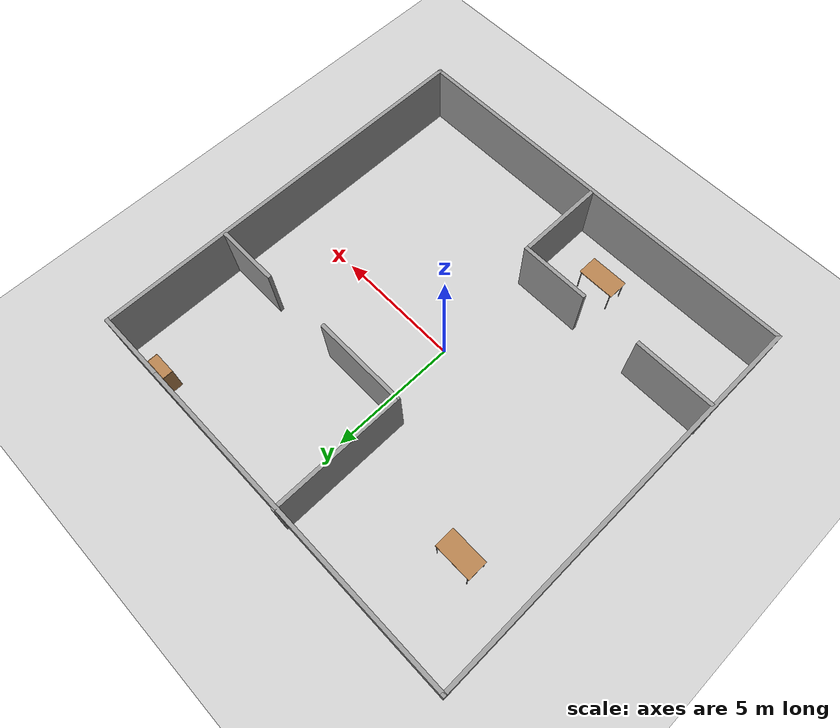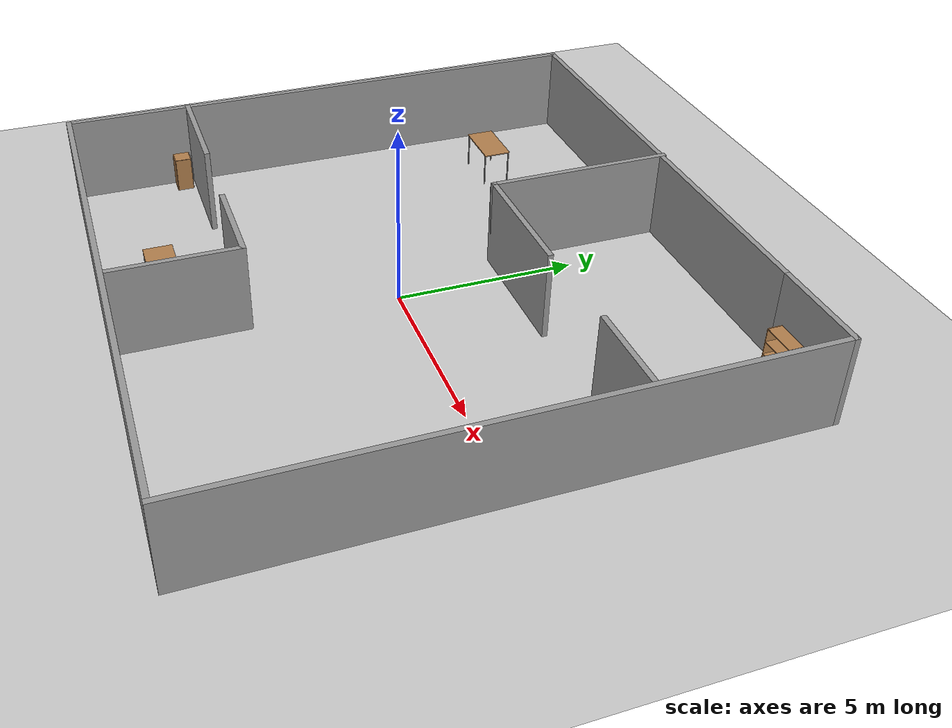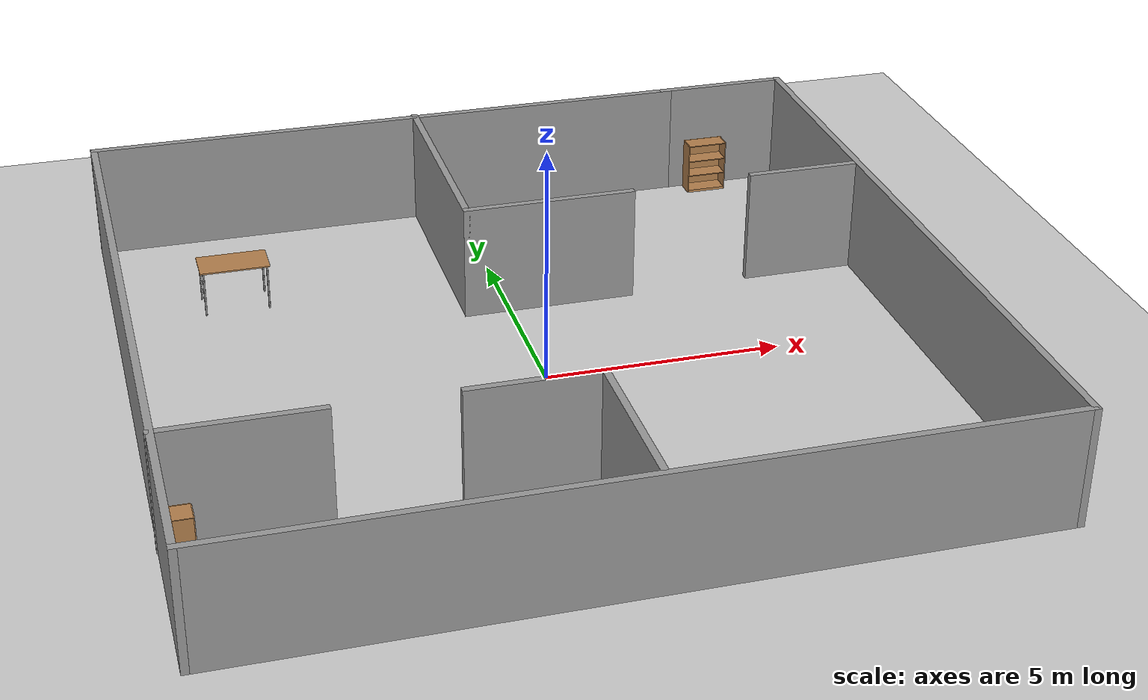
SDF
<sdf version="1.7">
 <world name="default">
  <light name="sun" type="directional">
   <pose>0 0 10 0 -0 0</pose>
   <diffuse>0.8 0.8 0.8 1</diffuse>
   <specular>0.2 0.2 0.2 1</specular>
   <attenuation>
    <range>1000</range>
    <constant>0.9</constant>
    <linear>0.01</linear>
    <quadratic>0.001</quadratic>
   </attenuation>
   <direction>-0.5 0.1 -0.9</direction>
   <spot><inner_angle>0</inner_angle><outer_angle>0</outer_angle><falloff>0</falloff></spot>
  </light>
  <model name="ground_plane">
   <static>1</static>
   <link name="link">
    <collision name="collision">
     <geometry><plane><normal>0 0 1</normal><size>100 100</size></plane></geometry>
     <surface>
      <contact><collide_bitmask>65535</collide_bitmask></contact>
      <friction><ode><mu>100</mu><mu2>50</mu2></ode></friction>
     </surface>
    </collision>
    <visual name="visual">
     <cast_shadows>0</cast_shadows>
     <geometry><plane><normal>0 0 1</normal><size>100 100</size></plane></geometry>
     <material>
      <script><uri>file://media/materials/scripts/gazebo.material</uri><name>Gazebo/Grey</name></script>
     </material>
    </visual>
   </link>
  </model>
  <gravity>0 0 -9.8</gravity>
  <magnetic_field>6e-06 2.3e-05 -4.2e-05</magnetic_field>
  <atmosphere type="adiabatic"/>
  <physics type="ode">
   <max_step_size>0.001</max_step_size>
   <real_time_factor>1</real_time_factor>
   <real_time_update_rate>1000</real_time_update_rate>
  </physics>
  <scene><ambient>0.4 0.4 0.4 1</ambient><background>0.7 0.7 0.7 1</background><shadows>1</shadows></scene>
  <audio><device>default</device></audio>
  <spherical_coordinates>
   <surface_model>EARTH_WGS84</surface_model>
   <latitude_deg>0</latitude_deg>
   <longitude_deg>0</longitude_deg>
   <elevation>0</elevation>
   <heading_deg>0</heading_deg>
  </spherical_coordinates>
  <model name="Untitled">
   <pose>-0.141606 0.2893 0 0 -0 0</pose>
   <link name="Wall_10">
    <collision name="Wall_10_Collision">
     <geometry><box><size>15.75 0.15 2.5</size></box></geometry>
     <pose>0 0 1.25 0 -0 0</pose>
    </collision>
    <visual name="Wall_10_Visual">
     <pose>0 0 1.25 0 -0 0</pose>
     <geometry><box><size>15.75 0.15 2.5</size></box></geometry>
     <material>
      <script><uri>file://media/materials/scripts/gazebo.material</uri><name>Gazebo/Grey</name></script>
      <ambient>1 1 1 1</ambient>
     </material>
     <meta><layer>0</layer></meta>
    </visual>
    <pose>-8.03946 -0.027434 0 0 -0 -1.5708</pose>
   </link>
   <link name="Wall_11">
    <collision name="Wall_11_Collision">
     <geometry><box><size>16.25 0.15 2.5</size></box></geometry>
     <pose>0 0 1.25 0 -0 0</pose>
    </collision>
    <visual name="Wall_11_Visual">
     <pose>0 0 1.25 0 -0 0</pose>
     <geometry><box><size>16.25 0.15 2.5</size></box></geometry>
     <material>
      <script><uri>file://media/materials/scripts/gazebo.material</uri><name>Gazebo/Grey</name></script>
      <ambient>1 1 1 1</ambient>
     </material>
     <meta><layer>0</layer></meta>
    </visual>
    <pose>0.010541 -7.82743 0 0 -0 0</pose>
   </link>
   <link name="Wall_12">
    <collision name="Wall_12_Collision">
     <geometry><box><size>15.75 0.15 2.5</size></box></geometry>
     <pose>0 0 1.25 0 -0 0</pose>
    </collision>
    <visual name="Wall_12_Visual">
     <pose>0 0 1.25 0 -0 0</pose>
     <geometry><box><size>15.75 0.15 2.5</size></box></geometry>
     <material>
      <script><uri>file://media/materials/scripts/gazebo.material</uri><name>Gazebo/Grey</name></script>
      <ambient>1 1 1 1</ambient>
     </material>
     <meta><layer>0</layer></meta>
    </visual>
    <pose>8.06054 -0.027434 0 0 -0 1.5708</pose>
   </link>
   <link name="Wall_13">
    <collision name="Wall_13_Collision">
     <geometry><box><size>3 0.15 2.5</size></box></geometry>
     <pose>0 0 1.25 0 -0 0</pose>
    </collision>
    <visual name="Wall_13_Visual">
     <pose>0 0 1.25 0 -0 0</pose>
     <geometry><box><size>3 0.15 2.5</size></box></geometry>
     <material>
      <script><uri>file://media/materials/scripts/gazebo.material</uri><name>Gazebo/Grey</name></script>
      <ambient>1 1 1 1</ambient>
     </material>
     <meta><layer>0</layer></meta>
    </visual>
    <pose>6.63554 7.77257 0 0 -0 3.14159</pose>
   </link>
   <link name="Wall_15">
    <collision name="Wall_15_Collision">
     <geometry><box><size>5.25 0.15 2.5</size></box></geometry>
     <pose>0 0 1.25 0 -0 0</pose>
    </collision>
    <visual name="Wall_15_Visual">
     <pose>0 0 1.25 0 -0 0</pose>
     <geometry><box><size>5.25 0.15 2.5</size></box></geometry>
     <material>
      <script><uri>file://media/materials/scripts/gazebo.material</uri><name>Gazebo/Grey</name></script>
      <ambient>1 1 1 1</ambient>
     </material>
     <meta><layer>0</layer></meta>
    </visual>
    <pose>-0.770523 5.27744 0 0 -0 -1.5708</pose>
   </link>
   <link name="Wall_16">
    <collision name="Wall_16_Collision">
     <geometry><box><size>3.75 0.15 2.5</size></box></geometry>
     <pose>0 0 1.25 0 -0 0</pose>
    </collision>
    <visual name="Wall_16_Visual">
     <pose>0 0 1.25 0 -0 0</pose>
     <geometry><box><size>3.75 0.15 2.5</size></box></geometry>
     <material>
      <script><uri>file://media/materials/scripts/gazebo.material</uri><name>Gazebo/Grey</name></script>
      <ambient>1 1 1 1</ambient>
     </material>
     <meta><layer>0</layer></meta>
    </visual>
    <pose>1.02948 2.72744 0 0 -0 0</pose>
   </link>
   <link name="Wall_19">
    <collision name="Wall_19_Collision">
     <geometry><box><size>2.5 0.15 2.5</size></box></geometry>
     <pose>0 0 1.25 0 -0 0</pose>
    </collision>
    <visual name="Wall_19_Visual">
     <pose>0 0 1.25 0 -0 0</pose>
     <geometry><box><size>2.5 0.15 2.5</size></box></geometry>
     <material>
      <script><uri>file://media/materials/scripts/gazebo.material</uri><name>Gazebo/Grey</name></script>
      <ambient>1 1 1 1</ambient>
     </material>
     <meta><layer>0</layer></meta>
    </visual>
    <pose>6.79169 2.82626 0 0 -0 0</pose>
   </link>
   <link name="Wall_21">
    <collision name="Wall_21_Collision">
     <geometry><box><size>3.25 0.15 2.5</size></box></geometry>
     <pose>0 0 1.25 0 -0 0</pose>
    </collision>
    <visual name="Wall_21_Visual">
     <pose>0 0 1.25 0 -0 0</pose>
     <geometry><box><size>3.25 0.15 2.5</size></box></geometry>
     <material>
      <script><uri>file://media/materials/scripts/gazebo.material</uri><name>Gazebo/Grey</name></script>
      <ambient>1 1 1 1</ambient>
     </material>
     <meta><layer>0</layer></meta>
    </visual>
    <pose>-6.51054 -4.30969 0 0 -0 0</pose>
   </link>
   <link name="Wall_23">
    <collision name="Wall_23_Collision">
     <geometry><box><size>2.75 0.15 2.5</size></box></geometry>
     <pose>0 0 1.25 0 -0 0</pose>
    </collision>
    <visual name="Wall_23_Visual">
     <pose>0 0 1.25 0 -0 0</pose>
     <geometry><box><size>2.75 0.15 2.5</size></box></geometry>
     <material>
      <script><uri>file://media/materials/scripts/gazebo.material</uri><name>Gazebo/Grey</name></script>
      <ambient>1 1 1 1</ambient>
     </material>
     <meta><layer>0</layer></meta>
    </visual>
    <pose>-1.16372 -4.34467 0 0 -0 0</pose>
   </link>
   <link name="Wall_24">
    <collision name="Wall_24_Collision">
     <geometry><box><size>3.5 0.15 2.5</size></box></geometry>
     <pose>0 0 1.25 0 -0 0</pose>
    </collision>
    <visual name="Wall_24_Visual">
     <pose>0 0 1.25 0 -0 0</pose>
     <geometry><box><size>3.5 0.15 2.5</size></box></geometry>
     <material>
      <script><uri>file://media/materials/scripts/gazebo.material</uri><name>Gazebo/Grey</name></script>
      <ambient>1 1 1 1</ambient>
     </material>
     <meta><layer>0</layer></meta>
    </visual>
    <pose>0.136279 -6.01967 0 0 -0 -1.5708</pose>
   </link>
   <link name="Wall_9">
    <collision name="Wall_9_Collision">
     <geometry><box><size>13.5 0.15 2.5</size></box></geometry>
     <pose>0 0 1.25 0 -0 0</pose>
    </collision>
    <visual name="Wall_9_Visual">
     <pose>0 0 1.25 0 -0 0</pose>
     <geometry><box><size>13.5 0.15 2.5</size></box></geometry>
     <material>
      <script><uri>file://media/materials/scripts/gazebo.material</uri><name>Gazebo/Grey</name></script>
      <ambient>1 1 1 1</ambient>
     </material>
     <meta><layer>0</layer></meta>
    </visual>
    <pose>-1.36446 7.77257 0 0 -0 3.14159</pose>
   </link>
   <static>1</static>
  </model>
  <model name="bookshelf">
   <static>1</static>
   <link name="link">
    <inertial><mass>1</mass></inertial>
    <collision name="back">
     <pose>0 0.005 0.6 0 -0 0</pose>
     <geometry><box><size>0.9 0.01 1.2</size></box></geometry>
    </collision>
    <visual name="visual1">
     <pose>0 0.005 0.6 0 -0 0</pose>
     <geometry><box><size>0.9 0.01 1.2</size></box></geometry>
     <material>
      <script><uri>file://media/materials/scripts/gazebo.material</uri><name>Gazebo/Wood</name></script>
     </material>
    </visual>
    <collision name="left_side">
     <pose>0.45 -0.195 0.6 0 -0 0</pose>
     <geometry><box><size>0.02 0.4 1.2</size></box></geometry>
    </collision>
    <visual name="visual2">
     <pose>0.45 -0.195 0.6 0 -0 0</pose>
     <geometry><box><size>0.02 0.4 1.2</size></box></geometry>
     <material>
      <script><uri>file://media/materials/scripts/gazebo.material</uri><name>Gazebo/Wood</name></script>
     </material>
    </visual>
    <collision name="right_side">
     <pose>-0.45 -0.195 0.6 0 -0 0</pose>
     <geometry><box><size>0.02 0.4 1.2</size></box></geometry>
    </collision>
    <visual name="visual3">
     <pose>-0.45 -0.195 0.6 0 -0 0</pose>
     <geometry><box><size>0.02 0.4 1.2</size></box></geometry>
     <material>
      <script><uri>file://media/materials/scripts/gazebo.material</uri><name>Gazebo/Wood</name></script>
     </material>
    </visual>
    <collision name="bottom">
     <pose>0 -0.195 0.03 0 -0 0</pose>
     <geometry><box><size>0.88 0.4 0.06</size></box></geometry>
    </collision>
    <visual name="visual4">
     <pose>0 -0.195 0.03 0 -0 0</pose>
     <geometry><box><size>0.88 0.4 0.06</size></box></geometry>
     <material>
      <script><uri>file://media/materials/scripts/gazebo.material</uri><name>Gazebo/Wood</name></script>
     </material>
    </visual>
    <collision name="top">
     <pose>0 -0.195 1.19 0 -0 0</pose>
     <geometry><box><size>0.88 0.4 0.02</size></box></geometry>
    </collision>
    <visual name="visual5">
     <pose>0 -0.195 1.19 0 -0 0</pose>
     <geometry><box><size>0.88 0.4 0.02</size></box></geometry>
     <material>
      <script><uri>file://media/materials/scripts/gazebo.material</uri><name>Gazebo/Wood</name></script>
     </material>
    </visual>
    <collision name="low_shelf">
     <pose>0 -0.195 0.43 0 -0 0</pose>
     <geometry><box><size>0.88 0.4 0.02</size></box></geometry>
    </collision>
    <visual name="visual6">
     <pose>0 -0.195 0.43 0 -0 0</pose>
     <geometry><box><size>0.88 0.4 0.02</size></box></geometry>
     <material>
      <script><uri>file://media/materials/scripts/gazebo.material</uri><name>Gazebo/Wood</name></script>
     </material>
    </visual>
    <collision name="high_shelf">
     <pose>0 -0.195 0.8 0 -0 0</pose>
     <geometry><box><size>0.88 0.4 0.02</size></box></geometry>
    </collision>
    <visual name="visual7">
     <pose>0 -0.195 0.8 0 -0 0</pose>
     <geometry><box><size>0.88 0.4 0.02</size></box></geometry>
     <material>
      <script><uri>file://media/materials/scripts/gazebo.material</uri><name>Gazebo/Wood</name></script>
     </material>
    </visual>
   </link>
   <pose>6.05371 7.95019 0 0 -0 0</pose>
  </model>
  <model name="cabinet">
   <static>1</static>
   <link name="cabinet_bottom_plate">
    <inertial>
     <pose>0 0 -1 0 -0 0</pose>
     <inertia><ixx>2.05</ixx><ixy>0</ixy><ixz>0</ixz><iyy>2.05</iyy><iyz>0</iyz><izz>2.05</izz></inertia>
     <mass>25</mass>
    </inertial>
    <collision name="cabinet_bottom_plate_geom">
     <pose>0 0 0.01 0 -0 0</pose>
     <geometry><box><size>0.45 0.45 0.02</size></box></geometry>
    </collision>
    <visual name="cabinet_bottom_plate_geom_visual">
     <pose>0 0 0.01 0 -0 0</pose>
     <geometry><box><size>0.45 0.45 0.02</size></box></geometry>
     <material>
      <script><uri>file://media/materials/scripts/gazebo.material</uri><name>Gazebo/Wood</name></script>
     </material>
    </visual>
    <collision name="cabinet_bottom_plate_geom_cabinet_back_plate">
     <pose>0.235 0 0.51 0 -0 0</pose>
     <geometry><box><size>0.02 0.45 1.02</size></box></geometry>
    </collision>
    <visual name="cabinet_bottom_plate_geom_cabinet_back_plate_visual">
     <pose>0.235 0 0.51 0 -0 0</pose>
     <geometry><box><size>0.02 0.45 1.02</size></box></geometry>
     <material>
      <script><uri>file://media/materials/scripts/gazebo.material</uri><name>Gazebo/Wood</name></script>
     </material>
    </visual>
    <collision name="cabinet_bottom_plate_geom_cabinet_left_plate">
     <pose>0 0.235 0.51 0 -0 0</pose>
     <geometry><box><size>0.45 0.02 1.02</size></box></geometry>
    </collision>
    <visual name="cabinet_bottom_plate_geom_cabinet_left_plate_visual">
     <pose>0 0.235 0.51 0 -0 0</pose>
     <geometry><box><size>0.45 0.02 1.02</size></box></geometry>
     <material>
      <script><uri>file://media/materials/scripts/gazebo.material</uri><name>Gazebo/Wood</name></script>
     </material>
    </visual>
    <collision name="cabinet_bottom_plate_geom_cabinet_middle_plate">
     <pose>0 0 0.51 0 -0 0</pose>
     <geometry><box><size>0.45 0.45 0.02</size></box></geometry>
    </collision>
    <visual name="cabinet_bottom_plate_geom_cabinet_middle_plate_visual">
     <pose>0 0 0.51 0 -0 0</pose>
     <geometry><box><size>0.45 0.45 0.02</size></box></geometry>
     <material>
      <script><uri>file://media/materials/scripts/gazebo.material</uri><name>Gazebo/Wood</name></script>
     </material>
    </visual>
    <collision name="cabinet_bottom_plate_geom_cabinet_right_plate">
     <pose>0 -0.235 0.51 0 -0 0</pose>
     <geometry><box><size>0.45 0.02 1.02</size></box></geometry>
    </collision>
    <visual name="cabinet_bottom_plate_geom_cabinet_right_plate_visual">
     <pose>0 -0.235 0.51 0 -0 0</pose>
     <geometry><box><size>0.45 0.02 1.02</size></box></geometry>
     <material>
      <script><uri>file://media/materials/scripts/gazebo.material</uri><name>Gazebo/Wood</name></script>
     </material>
    </visual>
    <collision name="cabinet_bottom_plate_geom_cabinet_top_plate">
     <pose>0 0 1.01 0 -0 0</pose>
     <geometry><box><size>0.45 0.45 0.02</size></box></geometry>
    </collision>
    <visual name="cabinet_bottom_plate_geom_cabinet_top_plate_visual">
     <pose>0 0 1.01 0 -0 0</pose>
     <geometry><box><size>0.45 0.45 0.02</size></box></geometry>
     <material>
      <script><uri>file://media/materials/scripts/gazebo.material</uri><name>Gazebo/Wood</name></script>
     </material>
    </visual>
   </link>
   <pose>-7.83707 -4.41762 0 0 -0 0</pose>
  </model>
  <model name="table">
   <static>1</static>
   <link name="link">
    <collision name="surface">
     <pose>0 0 1 0 -0 0</pose>
     <geometry><box><size>1.5 0.8 0.03</size></box></geometry>
     <surface><friction><ode><mu>0.6</mu><mu2>0.6</mu2></ode></friction></surface>
    </collision>
    <visual name="visual1">
     <pose>0 0 1 0 -0 0</pose>
     <geometry><box><size>1.5 0.8 0.03</size></box></geometry>
     <material>
      <script><uri>file://media/materials/scripts/gazebo.material</uri><name>Gazebo/Wood</name></script>
     </material>
    </visual>
    <collision name="front_left_leg">
     <pose>0.68 0.38 0.5 0 -0 0</pose>
     <geometry><cylinder><radius>0.02</radius><length>1</length></cylinder></geometry>
    </collision>
    <visual name="front_left_leg">
     <pose>0.68 0.38 0.5 0 -0 0</pose>
     <geometry><cylinder><radius>0.02</radius><length>1</length></cylinder></geometry>
     <material>
      <script><uri>file://media/materials/scripts/gazebo.material</uri><name>Gazebo/Grey</name></script>
     </material>
    </visual>
    <collision name="front_right_leg">
     <pose>0.68 -0.38 0.5 0 -0 0</pose>
     <geometry><cylinder><radius>0.02</radius><length>1</length></cylinder></geometry>
    </collision>
    <visual name="front_right_leg">
     <pose>0.68 -0.38 0.5 0 -0 0</pose>
     <geometry><cylinder><radius>0.02</radius><length>1</length></cylinder></geometry>
     <material>
      <script><uri>file://media/materials/scripts/gazebo.material</uri><name>Gazebo/Grey</name></script>
     </material>
    </visual>
    <collision name="back_right_leg">
     <pose>-0.68 -0.38 0.5 0 -0 0</pose>
     <geometry><cylinder><radius>0.02</radius><length>1</length></cylinder></geometry>
    </collision>
    <visual name="back_right_leg">
     <pose>-0.68 -0.38 0.5 0 -0 0</pose>
     <geometry><cylinder><radius>0.02</radius><length>1</length></cylinder></geometry>
     <material>
      <script><uri>file://media/materials/scripts/gazebo.material</uri><name>Gazebo/Grey</name></script>
     </material>
    </visual>
    <collision name="back_left_leg">
     <pose>-0.68 0.38 0.5 0 -0 0</pose>
     <geometry><cylinder><radius>0.02</radius><length>1</length></cylinder></geometry>
    </collision>
    <visual name="back_left_leg">
     <pose>-0.68 0.38 0.5 0 -0 0</pose>
     <geometry><cylinder><radius>0.02</radius><length>1</length></cylinder></geometry>
     <material>
      <script><uri>file://media/materials/scripts/gazebo.material</uri><name>Gazebo/Grey</name></script>
     </material>
    </visual>
   </link>
   <pose>-2.24985 -5.88455 0 0 -0 0</pose>
  </model>
  <model name="table_0">
   <static>1</static>
   <link name="link">
    <collision name="surface">
     <pose>0 0 1 0 -0 0</pose>
     <geometry><box><size>1.5 0.8 0.03</size></box></geometry>
     <surface><friction><ode><mu>0.6</mu><mu2>0.6</mu2></ode></friction></surface>
    </collision>
    <visual name="visual1">
     <pose>0 0 1 0 -0 0</pose>
     <geometry><box><size>1.5 0.8 0.03</size></box></geometry>
     <material>
      <script><uri>file://media/materials/scripts/gazebo.material</uri><name>Gazebo/Wood</name></script>
     </material>
    </visual>
    <collision name="front_left_leg">
     <pose>0.68 0.38 0.5 0 -0 0</pose>
     <geometry><cylinder><radius>0.02</radius><length>1</length></cylinder></geometry>
    </collision>
    <visual name="front_left_leg">
     <pose>0.68 0.38 0.5 0 -0 0</pose>
     <geometry><cylinder><radius>0.02</radius><length>1</length></cylinder></geometry>
     <material>
      <script><uri>file://media/materials/scripts/gazebo.material</uri><name>Gazebo/Grey</name></script>
     </material>
    </visual>
    <collision name="front_right_leg">
     <pose>0.68 -0.38 0.5 0 -0 0</pose>
     <geometry><cylinder><radius>0.02</radius><length>1</length></cylinder></geometry>
    </collision>
    <visual name="front_right_leg">
     <pose>0.68 -0.38 0.5 0 -0 0</pose>
     <geometry><cylinder><radius>0.02</radius><length>1</length></cylinder></geometry>
     <material>
      <script><uri>file://media/materials/scripts/gazebo.material</uri><name>Gazebo/Grey</name></script>
     </material>
    </visual>
    <collision name="back_right_leg">
     <pose>-0.68 -0.38 0.5 0 -0 0</pose>
     <geometry><cylinder><radius>0.02</radius><length>1</length></cylinder></geometry>
    </collision>
    <visual name="back_right_leg">
     <pose>-0.68 -0.38 0.5 0 -0 0</pose>
     <geometry><cylinder><radius>0.02</radius><length>1</length></cylinder></geometry>
     <material>
      <script><uri>file://media/materials/scripts/gazebo.material</uri><name>Gazebo/Grey</name></script>
     </material>
    </visual>
    <collision name="back_left_leg">
     <pose>-0.68 0.38 0.5 0 -0 0</pose>
     <geometry><cylinder><radius>0.02</radius><length>1</length></cylinder></geometry>
    </collision>
    <visual name="back_left_leg">
     <pose>-0.68 0.38 0.5 0 -0 0</pose>
     <geometry><cylinder><radius>0.02</radius><length>1</length></cylinder></geometry>
     <material>
      <script><uri>file://media/materials/scripts/gazebo.material</uri><name>Gazebo/Grey</name></script>
     </material>
    </visual>
   </link>
   <pose>-5.6502 4.81834 0 0 -0 0</pose>
  </model>
 </world>
</sdf>
